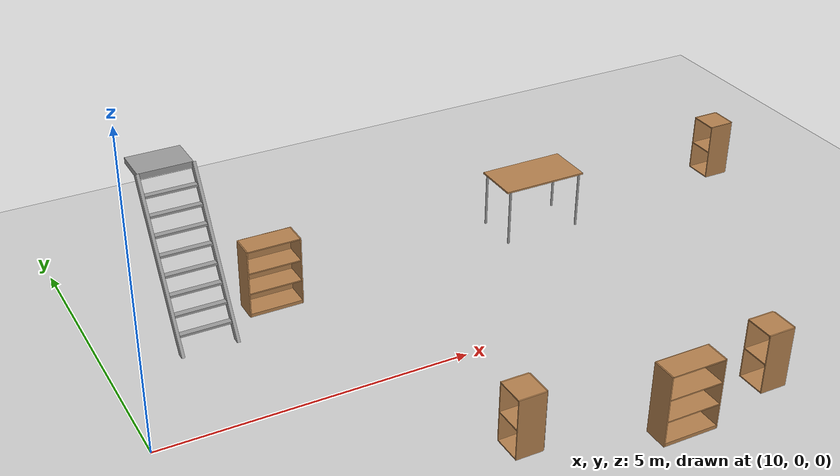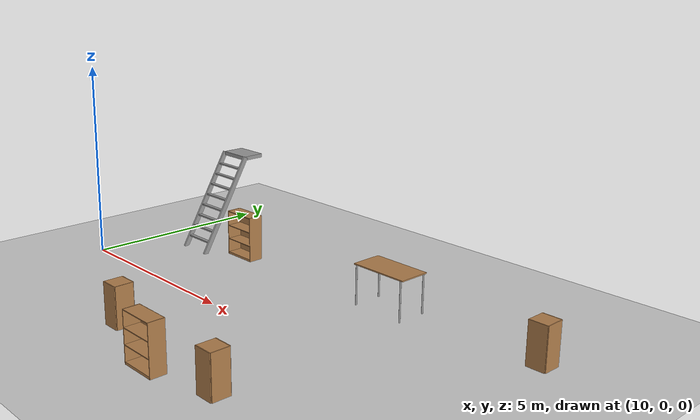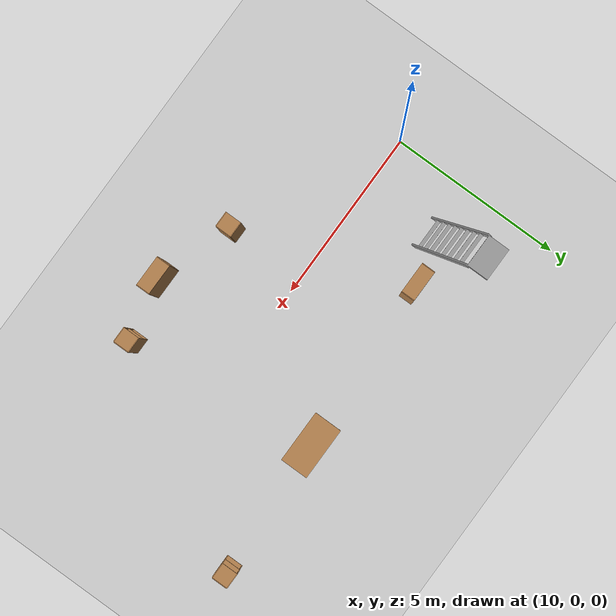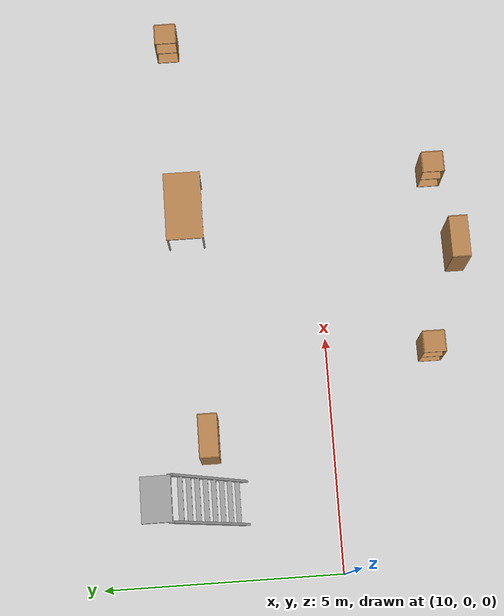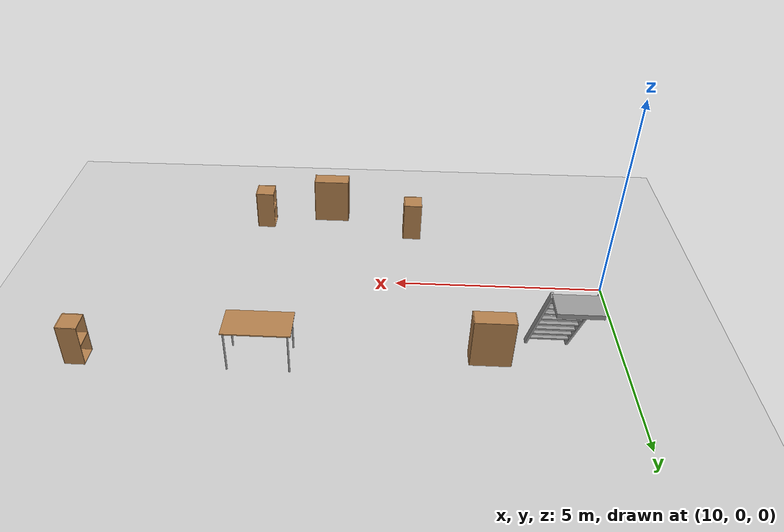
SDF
<sdf version="1.7">
 <world name="default">
  <model name="ground_plane">
   <static>1</static>
   <link name="link">
    <collision name="collision">
     <geometry><plane><normal>0 0 1</normal><size>100 100</size></plane></geometry>
     <surface><friction><ode><mu>100</mu><mu2>50</mu2></ode></friction></surface>
    </collision>
    <visual name="visual">
     <cast_shadows>0</cast_shadows>
     <geometry><plane><normal>0 0 1</normal><size>100 100</size></plane></geometry>
     <material>
      <script><uri>file://media/materials/scripts/gazebo.material</uri><name>Gazebo/Grey</name></script>
     </material>
    </visual>
   </link>
  </model>
  <model name="bookshelf">
   <static>1</static>
   <link name="link">
    <inertial><mass>1</mass></inertial>
    <collision name="back">
     <pose>0 0.005 0.6 0 -0 0</pose>
     <geometry><box><size>0.9 0.01 1.2</size></box></geometry>
    </collision>
    <visual name="visual1">
     <pose>0 0.005 0.6 0 -0 0</pose>
     <geometry><box><size>0.9 0.01 1.2</size></box></geometry>
     <material>
      <script><uri>file://media/materials/scripts/gazebo.material</uri><name>Gazebo/Wood</name></script>
     </material>
    </visual>
    <collision name="left_side">
     <pose>0.45 -0.195 0.6 0 -0 0</pose>
     <geometry><box><size>0.02 0.4 1.2</size></box></geometry>
    </collision>
    <visual name="visual2">
     <pose>0.45 -0.195 0.6 0 -0 0</pose>
     <geometry><box><size>0.02 0.4 1.2</size></box></geometry>
     <material>
      <script><uri>file://media/materials/scripts/gazebo.material</uri><name>Gazebo/Wood</name></script>
     </material>
    </visual>
    <collision name="right_side">
     <pose>-0.45 -0.195 0.6 0 -0 0</pose>
     <geometry><box><size>0.02 0.4 1.2</size></box></geometry>
    </collision>
    <visual name="visual3">
     <pose>-0.45 -0.195 0.6 0 -0 0</pose>
     <geometry><box><size>0.02 0.4 1.2</size></box></geometry>
     <material>
      <script><uri>file://media/materials/scripts/gazebo.material</uri><name>Gazebo/Wood</name></script>
     </material>
    </visual>
    <collision name="bottom">
     <pose>0 -0.195 0.03 0 -0 0</pose>
     <geometry><box><size>0.88 0.4 0.06</size></box></geometry>
    </collision>
    <visual name="visual4">
     <pose>0 -0.195 0.03 0 -0 0</pose>
     <geometry><box><size>0.88 0.4 0.06</size></box></geometry>
     <material>
      <script><uri>file://media/materials/scripts/gazebo.material</uri><name>Gazebo/Wood</name></script>
     </material>
    </visual>
    <collision name="top">
     <pose>0 -0.195 1.19 0 -0 0</pose>
     <geometry><box><size>0.88 0.4 0.02</size></box></geometry>
    </collision>
    <visual name="visual5">
     <pose>0 -0.195 1.19 0 -0 0</pose>
     <geometry><box><size>0.88 0.4 0.02</size></box></geometry>
     <material>
      <script><uri>file://media/materials/scripts/gazebo.material</uri><name>Gazebo/Wood</name></script>
     </material>
    </visual>
    <collision name="low_shelf">
     <pose>0 -0.195 0.43 0 -0 0</pose>
     <geometry><box><size>0.88 0.4 0.02</size></box></geometry>
    </collision>
    <visual name="visual6">
     <pose>0 -0.195 0.43 0 -0 0</pose>
     <geometry><box><size>0.88 0.4 0.02</size></box></geometry>
     <material>
      <script><uri>file://media/materials/scripts/gazebo.material</uri><name>Gazebo/Wood</name></script>
     </material>
    </visual>
    <collision name="high_shelf">
     <pose>0 -0.195 0.8 0 -0 0</pose>
     <geometry><box><size>0.88 0.4 0.02</size></box></geometry>
    </collision>
    <visual name="visual7">
     <pose>0 -0.195 0.8 0 -0 0</pose>
     <geometry><box><size>0.88 0.4 0.02</size></box></geometry>
     <material>
      <script><uri>file://media/materials/scripts/gazebo.material</uri><name>Gazebo/Wood</name></script>
     </material>
    </visual>
   </link>
   <pose>12.9298 2.8146 0 0 -0 0</pose>
  </model>
  <model name="cabinet">
   <static>1</static>
   <link name="cabinet_bottom_plate">
    <inertial>
     <pose>0 0 -1 0 -0 0</pose>
     <inertia><ixx>2.05</ixx><ixy>0</ixy><ixz>0</ixz><iyy>2.05</iyy><iyz>0</iyz><izz>2.05</izz></inertia>
     <mass>25</mass>
    </inertial>
    <collision name="cabinet_bottom_plate_geom">
     <pose>0 0 0.01 0 -0 0</pose>
     <geometry><box><size>0.45 0.45 0.02</size></box></geometry>
    </collision>
    <visual name="cabinet_bottom_plate_geom_visual">
     <pose>0 0 0.01 0 -0 0</pose>
     <geometry><box><size>0.45 0.45 0.02</size></box></geometry>
     <material>
      <script><uri>file://media/materials/scripts/gazebo.material</uri><name>Gazebo/Wood</name></script>
     </material>
    </visual>
    <collision name="cabinet_bottom_plate_geom_cabinet_back_plate">
     <pose>0.235 0 0.51 0 -0 0</pose>
     <geometry><box><size>0.02 0.45 1.02</size></box></geometry>
    </collision>
    <visual name="cabinet_bottom_plate_geom_cabinet_back_plate_visual">
     <pose>0.235 0 0.51 0 -0 0</pose>
     <geometry><box><size>0.02 0.45 1.02</size></box></geometry>
     <material>
      <script><uri>file://media/materials/scripts/gazebo.material</uri><name>Gazebo/Wood</name></script>
     </material>
    </visual>
    <collision name="cabinet_bottom_plate_geom_cabinet_left_plate">
     <pose>0 0.235 0.51 0 -0 0</pose>
     <geometry><box><size>0.45 0.02 1.02</size></box></geometry>
    </collision>
    <visual name="cabinet_bottom_plate_geom_cabinet_left_plate_visual">
     <pose>0 0.235 0.51 0 -0 0</pose>
     <geometry><box><size>0.45 0.02 1.02</size></box></geometry>
     <material>
      <script><uri>file://media/materials/scripts/gazebo.material</uri><name>Gazebo/Wood</name></script>
     </material>
    </visual>
    <collision name="cabinet_bottom_plate_geom_cabinet_middle_plate">
     <pose>0 0 0.51 0 -0 0</pose>
     <geometry><box><size>0.45 0.45 0.02</size></box></geometry>
    </collision>
    <visual name="cabinet_bottom_plate_geom_cabinet_middle_plate_visual">
     <pose>0 0 0.51 0 -0 0</pose>
     <geometry><box><size>0.45 0.45 0.02</size></box></geometry>
     <material>
      <script><uri>file://media/materials/scripts/gazebo.material</uri><name>Gazebo/Wood</name></script>
     </material>
    </visual>
    <collision name="cabinet_bottom_plate_geom_cabinet_right_plate">
     <pose>0 -0.235 0.51 0 -0 0</pose>
     <geometry><box><size>0.45 0.02 1.02</size></box></geometry>
    </collision>
    <visual name="cabinet_bottom_plate_geom_cabinet_right_plate_visual">
     <pose>0 -0.235 0.51 0 -0 0</pose>
     <geometry><box><size>0.45 0.02 1.02</size></box></geometry>
     <material>
      <script><uri>file://media/materials/scripts/gazebo.material</uri><name>Gazebo/Wood</name></script>
     </material>
    </visual>
    <collision name="cabinet_bottom_plate_geom_cabinet_top_plate">
     <pose>0 0 1.01 0 -0 0</pose>
     <geometry><box><size>0.45 0.45 0.02</size></box></geometry>
    </collision>
    <visual name="cabinet_bottom_plate_geom_cabinet_top_plate_visual">
     <pose>0 0 1.01 0 -0 0</pose>
     <geometry><box><size>0.45 0.45 0.02</size></box></geometry>
     <material>
      <script><uri>file://media/materials/scripts/gazebo.material</uri><name>Gazebo/Wood</name></script>
     </material>
    </visual>
   </link>
   <pose>14.591 -2.21285 0 0 -0 0</pose>
  </model>
  <model name="cabinet_0">
   <static>1</static>
   <link name="cabinet_bottom_plate">
    <inertial>
     <pose>0 0 -1 0 -0 0</pose>
     <inertia><ixx>2.05</ixx><ixy>0</ixy><ixz>0</ixz><iyy>2.05</iyy><iyz>0</iyz><izz>2.05</izz></inertia>
     <mass>25</mass>
    </inertial>
    <collision name="cabinet_bottom_plate_geom">
     <pose>0 0 0.01 0 -0 0</pose>
     <geometry><box><size>0.45 0.45 0.02</size></box></geometry>
    </collision>
    <visual name="cabinet_bottom_plate_geom_visual">
     <pose>0 0 0.01 0 -0 0</pose>
     <geometry><box><size>0.45 0.45 0.02</size></box></geometry>
     <material>
      <script><uri>file://media/materials/scripts/gazebo.material</uri><name>Gazebo/Wood</name></script>
     </material>
    </visual>
    <collision name="cabinet_bottom_plate_geom_cabinet_back_plate">
     <pose>0.235 0 0.51 0 -0 0</pose>
     <geometry><box><size>0.02 0.45 1.02</size></box></geometry>
    </collision>
    <visual name="cabinet_bottom_plate_geom_cabinet_back_plate_visual">
     <pose>0.235 0 0.51 0 -0 0</pose>
     <geometry><box><size>0.02 0.45 1.02</size></box></geometry>
     <material>
      <script><uri>file://media/materials/scripts/gazebo.material</uri><name>Gazebo/Wood</name></script>
     </material>
    </visual>
    <collision name="cabinet_bottom_plate_geom_cabinet_left_plate">
     <pose>0 0.235 0.51 0 -0 0</pose>
     <geometry><box><size>0.45 0.02 1.02</size></box></geometry>
    </collision>
    <visual name="cabinet_bottom_plate_geom_cabinet_left_plate_visual">
     <pose>0 0.235 0.51 0 -0 0</pose>
     <geometry><box><size>0.45 0.02 1.02</size></box></geometry>
     <material>
      <script><uri>file://media/materials/scripts/gazebo.material</uri><name>Gazebo/Wood</name></script>
     </material>
    </visual>
    <collision name="cabinet_bottom_plate_geom_cabinet_middle_plate">
     <pose>0 0 0.51 0 -0 0</pose>
     <geometry><box><size>0.45 0.45 0.02</size></box></geometry>
    </collision>
    <visual name="cabinet_bottom_plate_geom_cabinet_middle_plate_visual">
     <pose>0 0 0.51 0 -0 0</pose>
     <geometry><box><size>0.45 0.45 0.02</size></box></geometry>
     <material>
      <script><uri>file://media/materials/scripts/gazebo.material</uri><name>Gazebo/Wood</name></script>
     </material>
    </visual>
    <collision name="cabinet_bottom_plate_geom_cabinet_right_plate">
     <pose>0 -0.235 0.51 0 -0 0</pose>
     <geometry><box><size>0.45 0.02 1.02</size></box></geometry>
    </collision>
    <visual name="cabinet_bottom_plate_geom_cabinet_right_plate_visual">
     <pose>0 -0.235 0.51 0 -0 0</pose>
     <geometry><box><size>0.45 0.02 1.02</size></box></geometry>
     <material>
      <script><uri>file://media/materials/scripts/gazebo.material</uri><name>Gazebo/Wood</name></script>
     </material>
    </visual>
    <collision name="cabinet_bottom_plate_geom_cabinet_top_plate">
     <pose>0 0 1.01 0 -0 0</pose>
     <geometry><box><size>0.45 0.45 0.02</size></box></geometry>
    </collision>
    <visual name="cabinet_bottom_plate_geom_cabinet_top_plate_visual">
     <pose>0 0 1.01 0 -0 0</pose>
     <geometry><box><size>0.45 0.45 0.02</size></box></geometry>
     <material>
      <script><uri>file://media/materials/scripts/gazebo.material</uri><name>Gazebo/Wood</name></script>
     </material>
    </visual>
   </link>
   <pose>21.9346 3.05384 0 0 -0 0</pose>
  </model>
  <model name="table">
   <static>1</static>
   <link name="link">
    <collision name="surface">
     <pose>0 0 1 0 -0 0</pose>
     <geometry><box><size>1.5 0.8 0.03</size></box></geometry>
     <surface><friction><ode><mu>0.6</mu><mu2>0.6</mu2></ode></friction></surface>
    </collision>
    <visual name="visual1">
     <pose>0 0 1 0 -0 0</pose>
     <geometry><box><size>1.5 0.8 0.03</size></box></geometry>
     <material>
      <script><uri>file://media/materials/scripts/gazebo.material</uri><name>Gazebo/Wood</name></script>
     </material>
    </visual>
    <collision name="front_left_leg">
     <pose>0.68 0.38 0.5 0 -0 0</pose>
     <geometry><cylinder><radius>0.02</radius><length>1</length></cylinder></geometry>
    </collision>
    <visual name="front_left_leg">
     <pose>0.68 0.38 0.5 0 -0 0</pose>
     <geometry><cylinder><radius>0.02</radius><length>1</length></cylinder></geometry>
     <material>
      <script><uri>file://media/materials/scripts/gazebo.material</uri><name>Gazebo/Grey</name></script>
     </material>
    </visual>
    <collision name="front_right_leg">
     <pose>0.68 -0.38 0.5 0 -0 0</pose>
     <geometry><cylinder><radius>0.02</radius><length>1</length></cylinder></geometry>
    </collision>
    <visual name="front_right_leg">
     <pose>0.68 -0.38 0.5 0 -0 0</pose>
     <geometry><cylinder><radius>0.02</radius><length>1</length></cylinder></geometry>
     <material>
      <script><uri>file://media/materials/scripts/gazebo.material</uri><name>Gazebo/Grey</name></script>
     </material>
    </visual>
    <collision name="back_right_leg">
     <pose>-0.68 -0.38 0.5 0 -0 0</pose>
     <geometry><cylinder><radius>0.02</radius><length>1</length></cylinder></geometry>
    </collision>
    <visual name="back_right_leg">
     <pose>-0.68 -0.38 0.5 0 -0 0</pose>
     <geometry><cylinder><radius>0.02</radius><length>1</length></cylinder></geometry>
     <material>
      <script><uri>file://media/materials/scripts/gazebo.material</uri><name>Gazebo/Grey</name></script>
     </material>
    </visual>
    <collision name="back_left_leg">
     <pose>-0.68 0.38 0.5 0 -0 0</pose>
     <geometry><cylinder><radius>0.02</radius><length>1</length></cylinder></geometry>
    </collision>
    <visual name="back_left_leg">
     <pose>-0.68 0.38 0.5 0 -0 0</pose>
     <geometry><cylinder><radius>0.02</radius><length>1</length></cylinder></geometry>
     <material>
      <script><uri>file://media/materials/scripts/gazebo.material</uri><name>Gazebo/Grey</name></script>
     </material>
    </visual>
   </link>
   <pose>17.9308 2.86983 0 0 -0 0</pose>
  </model>
  <model name="cabinet_1">
   <static>1</static>
   <link name="cabinet_bottom_plate">
    <inertial>
     <pose>0 0 -1 0 -0 0</pose>
     <inertia><ixx>2.05</ixx><ixy>0</ixy><ixz>0</ixz><iyy>2.05</iyy><iyz>0</iyz><izz>2.05</izz></inertia>
     <mass>25</mass>
    </inertial>
    <collision name="cabinet_bottom_plate_geom">
     <pose>0 0 0.01 0 -0 0</pose>
     <geometry><box><size>0.45 0.45 0.02</size></box></geometry>
    </collision>
    <visual name="cabinet_bottom_plate_geom_visual">
     <pose>0 0 0.01 0 -0 0</pose>
     <geometry><box><size>0.45 0.45 0.02</size></box></geometry>
     <material>
      <script><uri>file://media/materials/scripts/gazebo.material</uri><name>Gazebo/Wood</name></script>
     </material>
    </visual>
    <collision name="cabinet_bottom_plate_geom_cabinet_back_plate">
     <pose>0.235 0 0.51 0 -0 0</pose>
     <geometry><box><size>0.02 0.45 1.02</size></box></geometry>
    </collision>
    <visual name="cabinet_bottom_plate_geom_cabinet_back_plate_visual">
     <pose>0.235 0 0.51 0 -0 0</pose>
     <geometry><box><size>0.02 0.45 1.02</size></box></geometry>
     <material>
      <script><uri>file://media/materials/scripts/gazebo.material</uri><name>Gazebo/Wood</name></script>
     </material>
    </visual>
    <collision name="cabinet_bottom_plate_geom_cabinet_left_plate">
     <pose>0 0.235 0.51 0 -0 0</pose>
     <geometry><box><size>0.45 0.02 1.02</size></box></geometry>
    </collision>
    <visual name="cabinet_bottom_plate_geom_cabinet_left_plate_visual">
     <pose>0 0.235 0.51 0 -0 0</pose>
     <geometry><box><size>0.45 0.02 1.02</size></box></geometry>
     <material>
      <script><uri>file://media/materials/scripts/gazebo.material</uri><name>Gazebo/Wood</name></script>
     </material>
    </visual>
    <collision name="cabinet_bottom_plate_geom_cabinet_middle_plate">
     <pose>0 0 0.51 0 -0 0</pose>
     <geometry><box><size>0.45 0.45 0.02</size></box></geometry>
    </collision>
    <visual name="cabinet_bottom_plate_geom_cabinet_middle_plate_visual">
     <pose>0 0 0.51 0 -0 0</pose>
     <geometry><box><size>0.45 0.45 0.02</size></box></geometry>
     <material>
      <script><uri>file://media/materials/scripts/gazebo.material</uri><name>Gazebo/Wood</name></script>
     </material>
    </visual>
    <collision name="cabinet_bottom_plate_geom_cabinet_right_plate">
     <pose>0 -0.235 0.51 0 -0 0</pose>
     <geometry><box><size>0.45 0.02 1.02</size></box></geometry>
    </collision>
    <visual name="cabinet_bottom_plate_geom_cabinet_right_plate_visual">
     <pose>0 -0.235 0.51 0 -0 0</pose>
     <geometry><box><size>0.45 0.02 1.02</size></box></geometry>
     <material>
      <script><uri>file://media/materials/scripts/gazebo.material</uri><name>Gazebo/Wood</name></script>
     </material>
    </visual>
    <collision name="cabinet_bottom_plate_geom_cabinet_top_plate">
     <pose>0 0 1.01 0 -0 0</pose>
     <geometry><box><size>0.45 0.45 0.02</size></box></geometry>
    </collision>
    <visual name="cabinet_bottom_plate_geom_cabinet_top_plate_visual">
     <pose>0 0 1.01 0 -0 0</pose>
     <geometry><box><size>0.45 0.45 0.02</size></box></geometry>
     <material>
      <script><uri>file://media/materials/scripts/gazebo.material</uri><name>Gazebo/Wood</name></script>
     </material>
    </visual>
   </link>
   <pose>18.5452 -2.57788 0 0 -0 0</pose>
  </model>
  <model name="bookshelf_0">
   <static>1</static>
   <link name="link">
    <inertial><mass>1</mass></inertial>
    <collision name="back">
     <pose>0 0.005 0.6 0 -0 0</pose>
     <geometry><box><size>0.9 0.01 1.2</size></box></geometry>
    </collision>
    <visual name="visual1">
     <pose>0 0.005 0.6 0 -0 0</pose>
     <geometry><box><size>0.9 0.01 1.2</size></box></geometry>
     <material>
      <script><uri>file://media/materials/scripts/gazebo.material</uri><name>Gazebo/Wood</name></script>
     </material>
    </visual>
    <collision name="left_side">
     <pose>0.45 -0.195 0.6 0 -0 0</pose>
     <geometry><box><size>0.02 0.4 1.2</size></box></geometry>
    </collision>
    <visual name="visual2">
     <pose>0.45 -0.195 0.6 0 -0 0</pose>
     <geometry><box><size>0.02 0.4 1.2</size></box></geometry>
     <material>
      <script><uri>file://media/materials/scripts/gazebo.material</uri><name>Gazebo/Wood</name></script>
     </material>
    </visual>
    <collision name="right_side">
     <pose>-0.45 -0.195 0.6 0 -0 0</pose>
     <geometry><box><size>0.02 0.4 1.2</size></box></geometry>
    </collision>
    <visual name="visual3">
     <pose>-0.45 -0.195 0.6 0 -0 0</pose>
     <geometry><box><size>0.02 0.4 1.2</size></box></geometry>
     <material>
      <script><uri>file://media/materials/scripts/gazebo.material</uri><name>Gazebo/Wood</name></script>
     </material>
    </visual>
    <collision name="bottom">
     <pose>0 -0.195 0.03 0 -0 0</pose>
     <geometry><box><size>0.88 0.4 0.06</size></box></geometry>
    </collision>
    <visual name="visual4">
     <pose>0 -0.195 0.03 0 -0 0</pose>
     <geometry><box><size>0.88 0.4 0.06</size></box></geometry>
     <material>
      <script><uri>file://media/materials/scripts/gazebo.material</uri><name>Gazebo/Wood</name></script>
     </material>
    </visual>
    <collision name="top">
     <pose>0 -0.195 1.19 0 -0 0</pose>
     <geometry><box><size>0.88 0.4 0.02</size></box></geometry>
    </collision>
    <visual name="visual5">
     <pose>0 -0.195 1.19 0 -0 0</pose>
     <geometry><box><size>0.88 0.4 0.02</size></box></geometry>
     <material>
      <script><uri>file://media/materials/scripts/gazebo.material</uri><name>Gazebo/Wood</name></script>
     </material>
    </visual>
    <collision name="low_shelf">
     <pose>0 -0.195 0.43 0 -0 0</pose>
     <geometry><box><size>0.88 0.4 0.02</size></box></geometry>
    </collision>
    <visual name="visual6">
     <pose>0 -0.195 0.43 0 -0 0</pose>
     <geometry><box><size>0.88 0.4 0.02</size></box></geometry>
     <material>
      <script><uri>file://media/materials/scripts/gazebo.material</uri><name>Gazebo/Wood</name></script>
     </material>
    </visual>
    <collision name="high_shelf">
     <pose>0 -0.195 0.8 0 -0 0</pose>
     <geometry><box><size>0.88 0.4 0.02</size></box></geometry>
    </collision>
    <visual name="visual7">
     <pose>0 -0.195 0.8 0 -0 0</pose>
     <geometry><box><size>0.88 0.4 0.02</size></box></geometry>
     <material>
      <script><uri>file://media/materials/scripts/gazebo.material</uri><name>Gazebo/Wood</name></script>
     </material>
    </visual>
   </link>
   <pose>16.7909 -2.76537 0 0 -0 0</pose>
  </model>
  <model name="ladder_60deg_0rails">
   <static>1</static>
   <link name="step0">
    <pose>0 0.15396 0.266667 0 -0 0</pose>
    <inertial>
     <mass>9.75482</mass>
     <inertia>
      <ixx>0.00957124</ixx>
      <iyy>0.65963</iyy>
      <izz>0.666842</izz>
      <ixy>0</ixy>
      <ixz>0</ixz>
      <iyz>0</iyz>
     </inertia>
    </inertial>
    <collision name="collision"><geometry><box><size>0.9 0.1016 0.0381</size></box></geometry></collision>
    <visual name="visual">
     <geometry><box><size>0.9 0.1016 0.0381</size></box></geometry>
     <material>
      <script><uri>file://media/materials/scripts/gazebo.material</uri><name>Gazebo/Grey</name></script>
     </material>
    </visual>
   </link>
   <link name="step1">
    <pose>0 0.30792 0.533333 0 -0 0</pose>
    <inertial>
     <mass>9.75482</mass>
     <inertia>
      <ixx>0.00957124</ixx>
      <iyy>0.65963</iyy>
      <izz>0.666842</izz>
      <ixy>0</ixy>
      <ixz>0</ixz>
      <iyz>0</iyz>
     </inertia>
    </inertial>
    <collision name="collision"><geometry><box><size>0.9 0.1016 0.0381</size></box></geometry></collision>
    <visual name="visual">
     <geometry><box><size>0.9 0.1016 0.0381</size></box></geometry>
     <material>
      <script><uri>file://media/materials/scripts/gazebo.material</uri><name>Gazebo/Grey</name></script>
     </material>
    </visual>
   </link>
   <link name="step2">
    <pose>0 0.46188 0.8 0 -0 0</pose>
    <inertial>
     <mass>9.75482</mass>
     <inertia>
      <ixx>0.00957124</ixx>
      <iyy>0.65963</iyy>
      <izz>0.666842</izz>
      <ixy>0</ixy>
      <ixz>0</ixz>
      <iyz>0</iyz>
     </inertia>
    </inertial>
    <collision name="collision"><geometry><box><size>0.9 0.1016 0.0381</size></box></geometry></collision>
    <visual name="visual">
     <geometry><box><size>0.9 0.1016 0.0381</size></box></geometry>
     <material>
      <script><uri>file://media/materials/scripts/gazebo.material</uri><name>Gazebo/Grey</name></script>
     </material>
    </visual>
   </link>
   <link name="step3">
    <pose>0 0.61584 1.06667 0 -0 0</pose>
    <inertial>
     <mass>9.75482</mass>
     <inertia>
      <ixx>0.00957124</ixx>
      <iyy>0.65963</iyy>
      <izz>0.666842</izz>
      <ixy>0</ixy>
      <ixz>0</ixz>
      <iyz>0</iyz>
     </inertia>
    </inertial>
    <collision name="collision"><geometry><box><size>0.9 0.1016 0.0381</size></box></geometry></collision>
    <visual name="visual">
     <geometry><box><size>0.9 0.1016 0.0381</size></box></geometry>
     <material>
      <script><uri>file://media/materials/scripts/gazebo.material</uri><name>Gazebo/Grey</name></script>
     </material>
    </visual>
   </link>
   <link name="step4">
    <pose>0 0.7698 1.33333 0 -0 0</pose>
    <inertial>
     <mass>9.75482</mass>
     <inertia>
      <ixx>0.00957124</ixx>
      <iyy>0.65963</iyy>
      <izz>0.666842</izz>
      <ixy>0</ixy>
      <ixz>0</ixz>
      <iyz>0</iyz>
     </inertia>
    </inertial>
    <collision name="collision"><geometry><box><size>0.9 0.1016 0.0381</size></box></geometry></collision>
    <visual name="visual">
     <geometry><box><size>0.9 0.1016 0.0381</size></box></geometry>
     <material>
      <script><uri>file://media/materials/scripts/gazebo.material</uri><name>Gazebo/Grey</name></script>
     </material>
    </visual>
   </link>
   <link name="step5">
    <pose>0 0.92376 1.6 0 -0 0</pose>
    <inertial>
     <mass>9.75482</mass>
     <inertia>
      <ixx>0.00957124</ixx>
      <iyy>0.65963</iyy>
      <izz>0.666842</izz>
      <ixy>0</ixy>
      <ixz>0</ixz>
      <iyz>0</iyz>
     </inertia>
    </inertial>
    <collision name="collision"><geometry><box><size>0.9 0.1016 0.0381</size></box></geometry></collision>
    <visual name="visual">
     <geometry><box><size>0.9 0.1016 0.0381</size></box></geometry>
     <material>
      <script><uri>file://media/materials/scripts/gazebo.material</uri><name>Gazebo/Grey</name></script>
     </material>
    </visual>
   </link>
   <link name="step6">
    <pose>0 1.07772 1.86667 0 -0 0</pose>
    <inertial>
     <mass>9.75482</mass>
     <inertia>
      <ixx>0.00957124</ixx>
      <iyy>0.65963</iyy>
      <izz>0.666842</izz>
      <ixy>0</ixy>
      <ixz>0</ixz>
      <iyz>0</iyz>
     </inertia>
    </inertial>
    <collision name="collision"><geometry><box><size>0.9 0.1016 0.0381</size></box></geometry></collision>
    <visual name="visual">
     <geometry><box><size>0.9 0.1016 0.0381</size></box></geometry>
     <material>
      <script><uri>file://media/materials/scripts/gazebo.material</uri><name>Gazebo/Grey</name></script>
     </material>
    </visual>
   </link>
   <link name="step7">
    <pose>0 1.23168 2.13333 0 -0 0</pose>
    <inertial>
     <mass>9.75482</mass>
     <inertia>
      <ixx>0.00957124</ixx>
      <iyy>0.65963</iyy>
      <izz>0.666842</izz>
      <ixy>0</ixy>
      <ixz>0</ixz>
      <iyz>0</iyz>
     </inertia>
    </inertial>
    <collision name="collision"><geometry><box><size>0.9 0.1016 0.0381</size></box></geometry></collision>
    <visual name="visual">
     <geometry><box><size>0.9 0.1016 0.0381</size></box></geometry>
     <material>
      <script><uri>file://media/materials/scripts/gazebo.material</uri><name>Gazebo/Grey</name></script>
     </material>
    </visual>
   </link>
   <link name="landing">
    <pose>0 1.68564 2.4 0 -0 0</pose>
    <inertial>
     <mass>57.6072</mass>
     <inertia><ixx>1.73518</ixx><iyy>3.89545</iyy><izz>5.6167</izz><ixy>0</ixy><ixz>0</ixz><iyz>0</iyz></inertia>
    </inertial>
    <collision name="collision"><geometry><box><size>0.9 0.6 0.1016</size></box></geometry></collision>
    <visual name="visual">
     <geometry><box><size>0.9 0.6 0.1016</size></box></geometry>
     <material>
      <script><uri>file://media/materials/scripts/gazebo.material</uri><name>Gazebo/Grey</name></script>
     </material>
    </visual>
   </link>
   <link name="left_side_wall">
    <pose>-0.45 0.69282 1.2 1.0472 -0 0</pose>
    <collision name="collision"><geometry><box><size>0.0508 2.85128 0.13</size></box></geometry></collision>
    <visual name="visual">
     <geometry><box><size>0.0508 2.85128 0.13</size></box></geometry>
     <material>
      <script><uri>file://media/materials/scripts/gazebo.material</uri><name>Gazebo/Grey</name></script>
     </material>
    </visual>
   </link>
   <link name="right_side_wall">
    <pose>0.45 0.69282 1.2 1.0472 -0 0</pose>
    <collision name="collision"><geometry><box><size>0.0508 2.85128 0.13</size></box></geometry></collision>
    <visual name="visual">
     <geometry><box><size>0.0508 2.85128 0.13</size></box></geometry>
     <material>
      <script><uri>file://media/materials/scripts/gazebo.material</uri><name>Gazebo/Grey</name></script>
     </material>
    </visual>
   </link>
   <pose>11.6089 1.95531 0 0 -0 0</pose>
  </model>
 </world>
</sdf>
